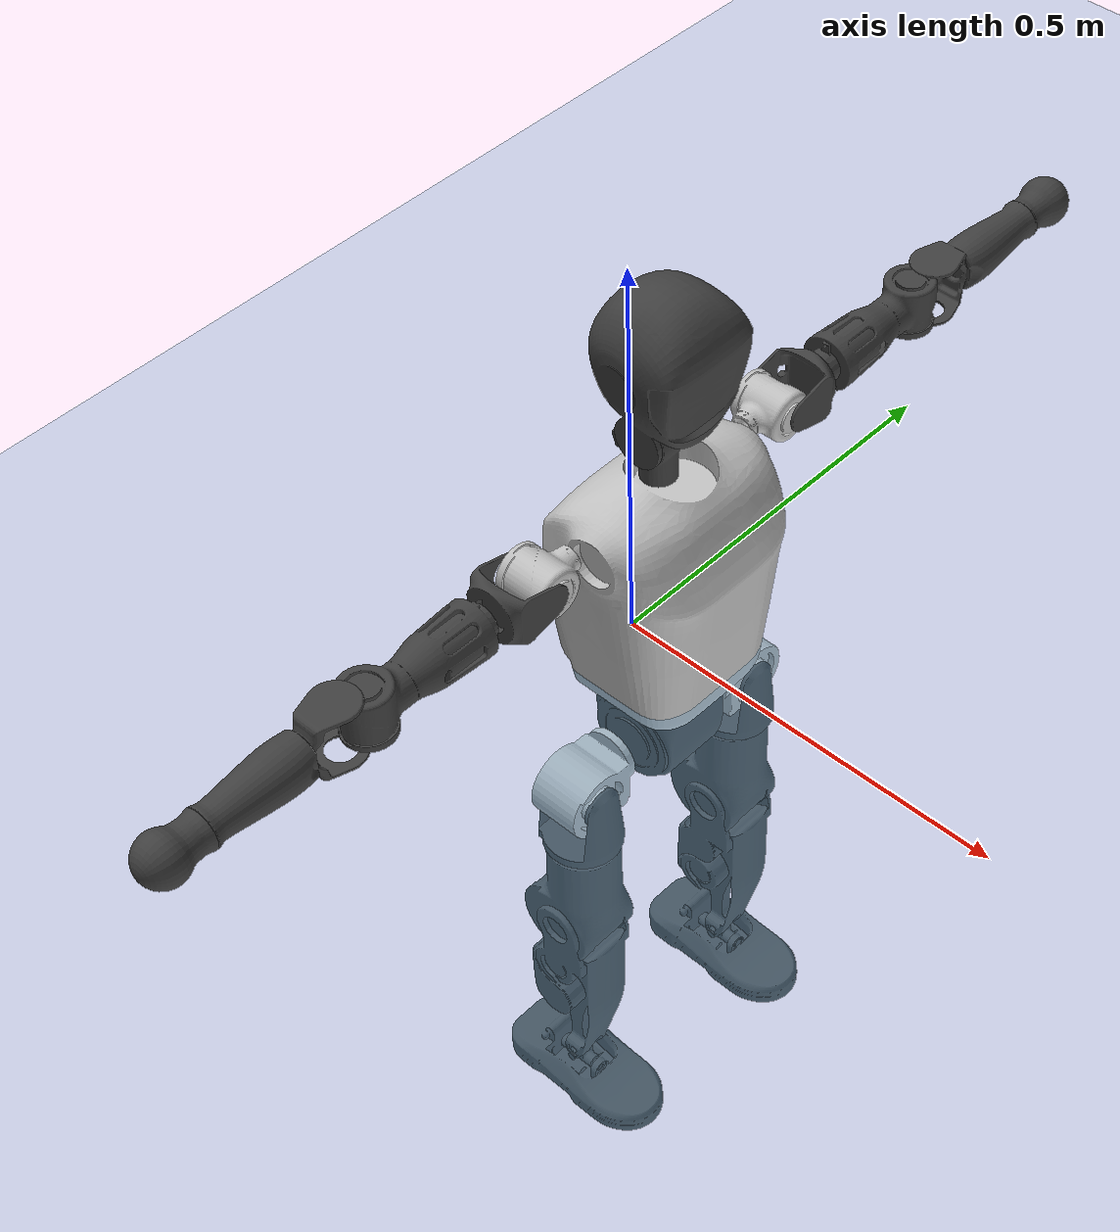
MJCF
<mujoco model="T1">
  <compiler angle="radian" assetdir="assets" balanceinertia="true" inertiafromgeom="false"/>

  <option timestep="0.005" density="1.2" viscosity="2e-05"/>

  <size nkey="1"/>

  <visual>
    <quality shadowsize="8192"/>
    <map shadowclip="0.5"/>
  </visual>

  <default>
    <default class="/">
      <joint armature="0.01" damping="0.01" frictionloss="0.1"/>
      <geom contype="0" conaffinity="0" group="1" solref="-1000 -80"/>
      <site size="0.01 0.005 0.005" group="5"/>
      <general forcelimited="true" biastype="affine" gainprm="25" biasprm="0 -25 -0.6"/>
      <default class="t1">
        <geom rgba="0.25 0.25 0.25 1"/>
        <default class="visual">
          <geom type="mesh" group="2"/>
        </default>
        <default class="collision">
          <geom group="3"/>
        </default>
        <default class="foot">
          <geom size="0.1115 0.05 0.015" type="box" condim="6" group="4" priority="1" solimp="0.015 1 0.015"/>
        </default>
        <default class="reward_collision_sphere">
          <geom group="5" rgba="1 0 0 1"/>
        </default>
      </default>
    </default>
  </default>

  <asset>
    <texture type="skybox" colorspace="auto" name="//unnamed_texture_0" builtin="gradient" rgb1="0.95 0.95 0.95" rgb2="0.95 0.95 0.95" width="100" height="600"/>
    <texture type="2d" colorspace="auto" name="texplane" builtin="checker" rgb1="0.345 0.575 0.748" rgb2="0.345 0.575 0.748" markrgb="1 1 1" width="512" height="512"/>
    <material name="MatPlane" class="/" texture="texplane" texuniform="true" texrepeat="2 2" specular="0.9"/>
    <mesh name="Trunk" class="/" file="Trunk.stl"/>
    <mesh name="H1" class="/" file="H1.stl"/>
    <mesh name="H2" class="/" file="H2.stl"/>
    <mesh name="AL1" class="/" file="AL1.stl"/>
    <mesh name="AL2" class="/" file="AL2.stl"/>
    <mesh name="AL3" class="/" file="AL3.stl"/>
    <mesh name="left_hand_link" class="/" file="left_hand_link.stl"/>
    <mesh name="AR1" class="/" file="AR1.stl"/>
    <mesh name="AR2" class="/" file="AR2.stl"/>
    <mesh name="AR3" class="/" file="AR3.stl"/>
    <mesh name="right_hand_link" class="/" file="right_hand_link.stl"/>
    <mesh name="Waist" class="/" file="Waist.stl"/>
    <mesh name="Hip_Pitch_Left" class="/" file="Hip_Pitch_Left.stl"/>
    <mesh name="Hip_Roll_Left" class="/" file="Hip_Roll_Left.stl"/>
    <mesh name="Hip_Yaw_Left" class="/" file="Hip_Yaw_Left.stl"/>
    <mesh name="Shank_Left" class="/" file="Shank_Left.stl"/>
    <mesh name="Ankle_Cross_Left" class="/" file="Ankle_Cross_Left.stl"/>
    <mesh name="left_foot_link" class="/" file="left_foot_link.stl"/>
    <mesh name="Hip_Pitch_Right" class="/" file="Hip_Pitch_Right.stl"/>
    <mesh name="Hip_Roll_Right" class="/" file="Hip_Roll_Right.stl"/>
    <mesh name="Hip_Yaw_Right" class="/" file="Hip_Yaw_Right.stl"/>
    <mesh name="Shank_Right" class="/" file="Shank_Right.stl"/>
    <mesh name="Ankle_Cross_Right" class="/" file="Ankle_Cross_Right.stl"/>
    <mesh name="right_foot_link" class="/" file="right_foot_link.stl"/>
  </asset>

  <worldbody>
    <geom name="floor" class="/" size="100 100 0.125" type="plane" group="0" material="MatPlane"/>
    <light name="toplight_shadow" class="/" pos="0 0 5" dir="0.0990148 0.0990148 -0.990148" type="directional" ambient="0.04 0.04 0.04" diffuse="0.55 0.55 0.55" specular="0.12 0.12 0.12"/>
    <light name="toplight_fill" class="/" pos="0 0 5" dir="0.0990148 0.0990148 -0.990148" type="directional" castshadow="false" ambient="0.04 0.04 0.04" diffuse="0.3 0.3 0.3" specular="0.08 0.08 0.08"/>
    <body name="trunk" childclass="t1" pos="0.000145745 -1.10577e-05 0.000287429" quat="1 6.37555e-05 -0.000254883 -8.89257e-05">
      <inertial pos="0.0400424 0.00230214 0.113049" quat="0.99984 -0.00127392 -0.0162477 -0.00738686" mass="11.9129" diaginertia="0.0162577 0.244163 0.070804"/>
      <joint name="//unnamed_joint_0" type="free" armature="0" damping="0" frictionloss="0"/>
      <geom name="//unnamed_geom_1" class="visual" rgba="0.76 0.76 0.76 1" mesh="Trunk"/>
      <geom name="//unnamed_geom_2" class="collision" size="0.0755457 0.100728 0.151091" pos="0.0425658 0 0.125984" type="box"/>
      <geom name="//unnamed_geom_3" class="reward_collision_sphere" size="0.115837" pos="0.0425658 0 0.104987"/>
      <geom name="//unnamed_geom_4" class="reward_collision_sphere" size="0.0151091" pos="0.0425658 0.107315 0"/>
      <geom name="//unnamed_geom_5" class="reward_collision_sphere" size="0.0151091" pos="0.0425658 -0.107315 0"/>
      <geom name="//unnamed_geom_6" class="reward_collision_sphere" size="0.0151091" pos="0.0425658 0.135091 0.188976"/>
      <geom name="//unnamed_geom_7" class="reward_collision_sphere" size="0.0151091" pos="0.0425658 -0.135091 0.188976"/>
      <site name="imu" pos="-0.00777704 -0.00456537 -0.00415699" size="0.0100728"/>
      <camera name="track" pos="0 -2.52507 0" quat="0.707107 0.707107 0 0" mode="trackcom"/>
      <camera name="ego_camera" pos="0.0865504 0 0.440944" quat="-0.5 -0.5 0.5 0.5"/>
      <body name="H1" pos="0.0433441 -0.00292374 0.257483" quat="1 -2.44242e-05 3.67694e-05 7.60161e-05">
        <inertial pos="-0.00117461 0.000616291 0.0613168" quat="0.766799 -0.00757916 0.0134588 0.641702" mass="0.438203" diaginertia="4.21914e-05 0.000696114 0.000191615"/>
        <joint name="AAHead_yaw" pos="0 0 0" axis="0.00126271 0.000669439 0.999999" range="-1.57031 1.5159" armature="0.0101177" damping="0.0235499" frictionloss="0.0889306"/>
        <geom name="//unnamed_geom_8" class="visual" mesh="H1"/>
        <body name="H2" pos="-0.00150258 -0.000134663 0.0619269" quat="1 -0.000167915 -9.83272e-05 -1.90074e-05">
          <inertial pos="0.00513139 -0.00134094 0.103913" quat="0.986437 0.114732 -0.0844841 -0.0814972" mass="0.647402" diaginertia="0.000365965 0.00621945 0.00227802"/>
          <joint name="Head_pitch" pos="0 0 0" axis="0.00408564 -0.999986 -0.00332192" stiffness="0.00107361" range="-1.22814 0.353094" armature="0.0101153" damping="0.0109741" frictionloss="0.0904399"/>
          <geom name="//unnamed_geom_9" class="visual" mesh="H2"/>
          <geom name="//unnamed_geom_10" class="collision" size="0.0805821" pos="0.0070943 0 0.115485"/>
          <geom name="//unnamed_geom_11" class="reward_collision_sphere" size="0.0906549" pos="0.0141886 0 0.104987"/>
        </body>
      </body>
      <body name="AL1" pos="0.0397209 0.13466 0.229088" quat="0.999999 0.000764935 0.000234042 0.00123133">
        <inertial pos="-0.000491947 0.0557315 -0.000758182" quat="0.508807 0.495231 -0.493347 0.502465" mass="0.53657" diaginertia="0.000244411 0.00427473 0.000371472"/>
        <joint name="Left_Shoulder_Pitch" pos="0 0 0" axis="-3.64749e-05 1 9.25463e-05" stiffness="0.00452015" range="-3.3294 1.27495" armature="0.0100976" damping="0.00783038" frictionloss="0.0996587"/>
        <geom name="//unnamed_geom_12" class="visual" rgba="0.76 0.76 0.76 1" mesh="AL1"/>
        <body name="AL2" pos="0.000227235 0.0626841 -0.0019902" quat="1 -0.000507919 0.000284922 -0.000742577">
          <inertial pos="0.00550809 0.0504179 0.00131159" quat="0.483643 0.522092 -0.485403 0.507832" mass="0.164907" diaginertia="7.24799e-05 0.00110539 0.000232773"/>
          <joint name="Left_Shoulder_Roll" pos="0 0 0" axis="-0.999996 0.00176837 -0.0023624" stiffness="0.000182258" range="-1.56983 1.73402" armature="0.00954124" damping="0.00931117" frictionloss="0.106039"/>
          <geom name="//unnamed_geom_13" class="visual" mesh="AL2"/>
          <body name="AL3" pos="0.000665336 0.0790702 0.0021029" quat="1 -7.49371e-06 7.28869e-05 -0.000170325">
            <inertial pos="-0.0028566 0.107859 -0.00192123" quat="0.703288 0.710841 -0.00357242 -0.008811" mass="1.11073" diaginertia="0.00241169 0.0418631 0.000811751"/>
            <joint name="Left_Elbow_Pitch" pos="0 0 0" axis="-0.00104698 -0.999991 0.00399781" range="-2.29263 2.32337" armature="0.0107369" damping="0.0216138" frictionloss="0.0979693"/>
            <geom name="//unnamed_geom_14" class="visual" mesh="AL3"/>
            <geom name="//unnamed_geom_15" class="collision" size="0.0302183 0.0755457" pos="0 0.0631266 0" quat="0.707105 0.707108 0 0" type="cylinder"/>
            <geom name="//unnamed_geom_16" class="reward_collision_sphere" size="0.036262"/>
            <body name="left_hand_link" pos="0.00102311 0.188828 -0.00213771" quat="1 -0.000415517 -0.000267604 -2.24743e-05">
              <inertial pos="-9.50235e-05 0.139266 0.000398303" quat="0.706038 0.708172 -0.00190921 -6.49013e-05" mass="0.330128" diaginertia="0.00141739 0.0259136 0.000277308"/>
              <joint name="Left_Elbow_Yaw" pos="0 0 0" axis="-0.00494741 -0.00238132 0.999985" stiffness="0.0100216" range="-2.49871 -0.00558262" armature="0.0103716" damping="0.000586082" frictionloss="0.113779"/>
              <geom name="//unnamed_geom_17" class="visual" mesh="left_hand_link"/>
              <geom name="//unnamed_geom_18" class="collision" size="0.0302183 0.0881367" pos="0 0.164129 0" quat="0.707105 0.707108 0 0" type="cylinder"/>
              <geom name="//unnamed_geom_19" class="reward_collision_sphere" size="0.0503638"/>
              <geom name="//unnamed_geom_20" class="reward_collision_sphere" size="0.0352547" pos="0 0.138879 0"/>
              <geom name="//unnamed_geom_21" class="reward_collision_sphere" size="0.0352547" pos="0 0.271445 0"/>
            </body>
          </body>
        </body>
      </body>
      <body name="AR1" pos="0.0398757 -0.133666 0.228578" quat="1 0.000777073 0.000193794 -0.000328177">
        <inertial pos="-0.00265594 -0.0571193 -0.0028468" quat="0.500756 0.507412 -0.501325 0.490357" mass="0.562163" diaginertia="0.000246372 0.00421261 0.000385264"/>
        <joint name="Right_Shoulder_Pitch" pos="0 0 0" axis="-5.95117e-05 -1 -0.000843776" stiffness="0.00557993" range="-1.22312 3.29863" armature="0.0098168" damping="0" frictionloss="0.0873482"/>
        <geom name="//unnamed_geom_22" class="visual" rgba="0.76 0.76 0.76 1" mesh="AR1"/>
        <body name="AR2" pos="-0.00181471 -0.0591659 0.000950046" quat="1 -5.91227e-05 -4.29509e-05 0.000197664">
          <inertial pos="0.00110304 -0.0503198 -0.000940857" quat="0.51847 0.494719 -0.505575 0.480454" mass="0.162675" diaginertia="7.34655e-05 0.00109387 0.000230435"/>
          <joint name="Right_Shoulder_Roll" pos="0 0 0" axis="-0.999997 -0.00254345 0.000310071" stiffness="0.00579695" range="-1.7439 1.56304" armature="0.0100208" damping="0" frictionloss="0.0966163"/>
          <geom name="//unnamed_geom_23" class="visual" mesh="AR2"/>
          <body name="AR3" pos="-0.000751102 -0.0752696 -0.000560767" quat="1 0.000843928 0.000118598 -0.000461886">
            <inertial pos="-0.000782858 -0.107282 0.000913109" quat="0.706285 0.707859 -0.00871115 0.00462335" mass="1.06674" diaginertia="0.00235835 0.0405607 0.000810467"/>
            <joint name="Right_Elbow_Pitch" pos="0 0 0" axis="-7.7409e-05 1 0.000286234" stiffness="0.000450847" range="-2.25316 2.25742" armature="0.0101204" damping="0.00861076" frictionloss="0.0952938"/>
            <geom name="//unnamed_geom_24" class="visual" mesh="AR3"/>
            <geom name="//unnamed_geom_25" class="collision" size="0.0302183 0.0755457" pos="0 -0.0631266 0" quat="0.707105 0.707108 0 0" type="cylinder"/>
            <geom name="//unnamed_geom_26" class="reward_collision_sphere" size="0.036262"/>
            <body name="right_hand_link" pos="-0.00170465 -0.183213 0.00221915" quat="0.999999 -0.000271432 -0.000811172 -0.000668891">
              <inertial pos="-8.07903e-05 -0.136027 0.000845472" quat="0.708377 0.705821 0.00114172 0.00422769" mass="0.343352" diaginertia="0.00147341 0.0262202 0.000276082"/>
              <joint name="Right_Elbow_Yaw" pos="0 0 0" axis="-0.000698588 0.00027034 1" stiffness="0.00121427" range="0.0371365 2.42797" armature="0.0102352" damping="0.00855738" frictionloss="0.114375"/>
              <geom name="//unnamed_geom_27" class="visual" mesh="right_hand_link"/>
              <geom name="//unnamed_geom_28" class="collision" size="0.0302183 0.0881367" pos="0 -0.164129 0" quat="0.707105 0.707108 0 0" type="cylinder"/>
              <geom name="//unnamed_geom_29" class="reward_collision_sphere" size="0.0503638"/>
              <geom name="//unnamed_geom_30" class="reward_collision_sphere" size="0.0352547" pos="0 -0.138879 0"/>
              <geom name="//unnamed_geom_31" class="reward_collision_sphere" size="0.0352547" pos="0 -0.271445 0"/>
            </body>
          </body>
        </body>
      </body>
      <body name="Waist" pos="0.0414105 0.000477084 -0.122887" quat="1 -0.000256388 0.000111933 7.77453e-06">
        <inertial pos="-0.000852341 -0.00148184 0.00655721" quat="0.984149 0.00179963 -0.177297 0.00353546" mass="2.5051" diaginertia="0.000915429 0.0165953 0.00592005"/>
        <joint name="Waist" pos="0 0 0" axis="3.23646e-05 -0.000687983 1" range="-1.59954 1.56977" armature="0.0111164" damping="0.0189489" frictionloss="0.10173"/>
        <geom name="//unnamed_geom_32" class="visual" mesh="Waist"/>
        <body name="Hip_Pitch_Left" pos="-0.000621121 0.134209 -0.00183425" quat="1 0.000248119 -0.000118516 -5.94457e-05">
          <inertial pos="0.000371844 -0.0068465 -0.0169671" quat="0.976111 0.216709 0.0134294 0.00799775" mass="1.08094" diaginertia="0.000324319 0.00481749 0.00159764"/>
          <joint name="Left_Hip_Pitch" pos="0 0 0" axis="0.000516809 0.999998 -0.00216299" stiffness="0.00319709" range="-1.80086 1.62566" armature="0.011386" damping="0.0179778" frictionloss="0.10037"/>
          <geom name="//unnamed_geom_33" class="visual" rgba="0.76 0.76 0.76 1" mesh="Hip_Pitch_Left"/>
          <body name="Hip_Roll_Left" pos="0.00243386 -0.00193281 -0.0230426" quat="1 5.57122e-05 -2.33217e-05 -1.33699e-05">
            <inertial pos="-0.000158397 0.000200229 -0.0554808" quat="0.704596 -0.0123707 0.00492299 0.709484" mass="0.380017" diaginertia="0.000302434 0.00493894 0.000653057"/>
            <joint name="Left_Hip_Roll" pos="0 0 0" axis="-0.999931 0.0117238 0.000717258" stiffness="0.00982964" range="-1.56587 0.182105" armature="0.0114146" damping="0.0133968" frictionloss="0.0929522"/>
            <geom name="//unnamed_geom_34" class="visual" mesh="Hip_Roll_Left"/>
            <geom name="//unnamed_geom_35" class="reward_collision_sphere" size="0.0554002"/>
            <body name="Hip_Yaw_Left" pos="-0.00219991 -0.00121869 -0.0838509" quat="1 -0.0001745 -0.00041397 -0.000338683">
              <inertial pos="-0.00763896 -0.000771345 -0.0927733" quat="0.697632 -0.0302661 -0.0318534 0.715108" mass="2.21542" diaginertia="0.00460501 0.0778698 0.00328885"/>
              <joint name="Left_Hip_Yaw" pos="0 0 0" axis="0.000830033 -0.00638609 -0.999979" stiffness="0.00316739" range="-1.04066 1.06094" armature="0.0102154" damping="0.000620072" frictionloss="0.101682"/>
              <geom name="//unnamed_geom_36" class="visual" mesh="Hip_Yaw_Left"/>
              <geom name="//unnamed_geom_37" class="collision" size="0.0503638 0.0805821" type="cylinder"/>
              <body name="Shank_Left" pos="-0.00722725 -0.000200363 -0.141278" quat="1 0.000178425 5.52824e-05 -5.37013e-05">
                <inertial pos="-0.00330896 0.00314986 -0.127849" quat="0.997534 0.00147296 -0.0245514 0.0657408" mass="1.70564" diaginertia="0.00617261 0.111287 0.00233042"/>
                <joint name="Left_Knee_Pitch" pos="0 0 0" axis="-0.00354364 0.999989 -0.0030489" range="0.0177405 2.32461" armature="0.0102245" damping="0.0142673" frictionloss="0.105802"/>
                <geom name="//unnamed_geom_38" class="visual" mesh="Shank_Left"/>
                <geom name="//unnamed_geom_39" class="collision" size="0.0503638 0.0755457" pos="0 0 -0.125984" type="cylinder"/>
                <geom name="//unnamed_geom_40" class="reward_collision_sphere" size="0.065473"/>
                <body name="Ankle_Cross_Left" pos="-0.000513667 -0.000781449 -0.291449" quat="1 -0.000231325 0.00028092 -6.53152e-05">
                  <inertial pos="-0.00309987 0.00254271 -0.0069574" quat="0.444412 0.543413 0.560327 0.439584" mass="0.0776669" diaginertia="5.43262e-06 8.09163e-05 1.46086e-05"/>
                  <joint name="Left_Ankle_Pitch" pos="0 0 0" axis="-0.000373984 1 0.000275262" range="-0.814453 0.328847" armature="0.00952377" damping="0.0116435" frictionloss="0.0980685"/>
                  <geom name="//unnamed_geom_41" class="visual" mesh="Ankle_Cross_Left"/>
                  <body name="left_foot_link" pos="0.000460532 -0.00220129 -0.0102999" quat="1 -0.000161698 -0.000237374 -0.000190282">
                    <inertial pos="-0.00275566 -2.7426e-05 -0.012225" quat="-0.00223572 0.620618 -0.00106344 0.78411" mass="0.675847" diaginertia="0.000451993 0.00753516 0.00277427"/>
                    <joint name="Left_Ankle_Roll" pos="0 0 0" axis="-0.999998 -0.00175591 0.00102018" range="-0.433315 0.442552" armature="0.0101503" damping="0.0130579" frictionloss="0.099904"/>
                    <geom name="//unnamed_geom_42" class="visual" mesh="left_foot_link"/>
                    <geom name="left_foot" class="foot" size="0.105511 0.0479151 0.0149449" pos="0.0070943 0 -0.015748"/>
                    <geom name="//unnamed_geom_44" class="reward_collision_sphere" size="0.0523784" pos="0.0070943 0 -0.015748"/>
                    <geom name="//unnamed_geom_45" class="reward_collision_sphere" size="0.0302183" pos="0.0673958 -0.0290382 -0.015748"/>
                    <geom name="//unnamed_geom_46" class="reward_collision_sphere" size="0.0302183" pos="-0.0496601 -0.0290382 -0.015748"/>
                    <site name="left_foot" class="foot" pos="0.0070943 0 -0.015748" size="0.0100728"/>
                  </body>
                </body>
              </body>
            </body>
          </body>
        </body>
        <body name="Hip_Pitch_Right" pos="-0.000268231 -0.134359 0.000740295" quat="0.999999 -0.00017635 0.00112013 0.000320171">
          <inertial pos="-0.00235782 0.00994716 -0.0159964" quat="0.97367 -0.227603 0.0117729 -0.00496624" mass="1.07086" diaginertia="0.000333562 0.00487242 0.00159011"/>
          <joint name="Right_Hip_Pitch" pos="0 0 0" axis="0.000627218 -0.999995 -0.00310822" range="-1.57241 1.74825" armature="0.00899128" damping="0.00992651" frictionloss="0.0990097"/>
          <geom name="//unnamed_geom_47" class="visual" rgba="0.76 0.76 0.76 1" mesh="Hip_Pitch_Right"/>
          <body name="Hip_Roll_Right" pos="0.00209659 0.000625981 -0.0234267" quat="1 -0.000410058 0.000615724 0.000279454">
            <inertial pos="0.0011283 -0.000310732 -0.0542494" quat="0.705975 -0.018801 -0.00367075 0.707978" mass="0.392854" diaginertia="0.000314318 0.00502633 0.000658214"/>
            <joint name="Right_Hip_Roll" pos="0 0 0" axis="-0.999995 -0.00290062 0.00100299" range="-0.153322 1.58996" armature="0.0101108" damping="0.0108765" frictionloss="0.1072"/>
            <geom name="//unnamed_geom_48" class="visual" mesh="Hip_Roll_Right"/>
            <geom name="//unnamed_geom_49" class="reward_collision_sphere" size="0.0554002"/>
            <body name="Hip_Yaw_Right" pos="-0.000172695 0.000684032 -0.0870298" quat="1 -0.000514422 0.000412237 7.82737e-06">
              <inertial pos="-0.0042342 -0.00172948 -0.0964268" quat="0.713676 -0.031129 -0.0331463 0.698999" mass="2.16843" diaginertia="0.00460426 0.082151 0.00320652"/>
              <joint name="Right_Hip_Yaw" pos="0 0 0" axis="-0.0124443 0.00541533 -0.999908" stiffness="0.000967774" range="-1.01974 0.989082" armature="0.0114398" damping="0.000503276" frictionloss="0.100659"/>
              <geom name="//unnamed_geom_50" class="visual" mesh="Hip_Yaw_Right"/>
              <geom name="//unnamed_geom_51" class="collision" size="0.0503638 0.0805821" type="cylinder"/>
              <body name="Shank_Right" pos="-0.0104933 -0.000104797 -0.138616" quat="1 0.000352115 0.000684474 -0.00025035">
                <inertial pos="-0.00360894 -0.000795564 -0.131438" quat="0.99934 -0.00224797 -0.0218531 -0.0289331" mass="1.88126" diaginertia="0.0065723 0.113317 0.00257075"/>
                <joint name="Right_Knee_Pitch" pos="0 0 0" axis="0.00839125 -0.999965 1.01697e-05" stiffness="0.00417984" range="-2.28553 -0.00252171" armature="0.011342" damping="0.0168176" frictionloss="0.0997815"/>
                <geom name="//unnamed_geom_52" class="visual" mesh="Shank_Right"/>
                <geom name="//unnamed_geom_53" class="collision" size="0.0503638 0.0755457" pos="0 0 -0.125984" type="cylinder"/>
                <geom name="//unnamed_geom_54" class="reward_collision_sphere" size="0.065473"/>
                <body name="Ankle_Cross_Right" pos="-0.00117349 -0.00121168 -0.294602" quat="1 -0.000201955 0.000207323 -9.06678e-05">
                  <inertial pos="-0.00288551 -0.00170588 -0.00831226" quat="0.443094 0.55106 0.550985 0.443189" mass="0.0756857" diaginertia="5.38931e-06 8.52051e-05 1.4772e-05"/>
                  <joint name="Right_Ankle_Pitch" pos="0 0 0" axis="0.000198933 -0.999983 -0.00582453" range="-0.40529 0.813681" armature="0.0100699" damping="0.00616517" frictionloss="0.10586"/>
                  <geom name="//unnamed_geom_55" class="visual" mesh="Ankle_Cross_Right"/>
                  <body name="right_foot_link" pos="0.00274707 -0.000768524 -0.0143341" quat="1 2.1357e-05 -1.99397e-06 -2.93314e-06">
                    <inertial pos="-0.00267232 0.000767369 -0.00977877" quat="0.00018163 0.621155 0.00134534 0.783686" mass="0.702481" diaginertia="0.000489748 0.00745319 0.00280032"/>
                    <joint name="Right_Ankle_Roll" pos="0 0 0" axis="-0.999959 -0.00715599 -0.0055084" range="-0.49224 0.441967" armature="0.00967107" damping="0" frictionloss="0.0959458"/>
                    <geom name="//unnamed_geom_56" class="visual" mesh="right_foot_link"/>
                    <geom name="right_foot" class="foot" size="0.105835 0.0450028 0.0148523" pos="0.0070943 0 -0.015748"/>
                    <geom name="//unnamed_geom_58" class="reward_collision_sphere" size="0.0402911"/>
                    <geom name="//unnamed_geom_59" class="reward_collision_sphere" size="0.0302183" pos="0.0070943 0 -0.015748"/>
                    <geom name="//unnamed_geom_60" class="reward_collision_sphere" size="0.0302183" pos="0.0673958 0.0290382 -0.015748"/>
                    <geom name="//unnamed_geom_61" class="reward_collision_sphere" size="0.0302183" pos="-0.0496601 0.0290382 -0.015748"/>
                    <site name="right_foot" class="foot" pos="0.0070943 0 -0.015748" size="0.0100728"/>
                  </body>
                </body>
              </body>
            </body>
          </body>
        </body>
      </body>
    </body>
  </worldbody>

  <contact>
    <pair class="/" geom1="floor" geom2="left_foot" name="//unnamed_contact_0"/>
    <pair class="/" geom1="floor" geom2="right_foot" name="//unnamed_contact_1"/>
  </contact>

  <actuator>
    <general name="AAHead_yaw" class="/" joint="AAHead_yaw" forcerange="-6.87633 6.87633" gainprm="23.5579" biasprm="0 -23.5579 -0.603107"/>
    <general name="Head_pitch" class="/" joint="Head_pitch" forcerange="-7.04628 7.04628" gainprm="23.5579" biasprm="0 -23.5579 -0.603107"/>
    <general name="Left_Shoulder_Pitch" class="/" joint="Left_Shoulder_Pitch" forcerange="-16.8586 16.8586" gainprm="23.5579" biasprm="0 -23.5579 -0.603107"/>
    <general name="Left_Shoulder_Roll" class="/" joint="Left_Shoulder_Roll" forcerange="-18.2813 18.2813" gainprm="23.5579" biasprm="0 -23.5579 -0.603107"/>
    <general name="Left_Elbow_Pitch" class="/" joint="Left_Elbow_Pitch" forcerange="-18.1213 18.1213" gainprm="23.5579" biasprm="0 -23.5579 -0.603107"/>
    <general name="Left_Elbow_Yaw" class="/" joint="Left_Elbow_Yaw" forcerange="-18.5379 18.5379" gainprm="23.5579" biasprm="0 -23.5579 -0.603107"/>
    <general name="Right_Shoulder_Pitch" class="/" joint="Right_Shoulder_Pitch" forcerange="-18.0966 18.0966" gainprm="23.5579" biasprm="0 -23.5579 -0.603107"/>
    <general name="Right_Shoulder_Roll" class="/" joint="Right_Shoulder_Roll" forcerange="-17.1539 17.1539" gainprm="23.5579" biasprm="0 -23.5579 -0.603107"/>
    <general name="Right_Elbow_Pitch" class="/" joint="Right_Elbow_Pitch" forcerange="-19.996 19.996" gainprm="23.5579" biasprm="0 -23.5579 -0.603107"/>
    <general name="Right_Elbow_Yaw" class="/" joint="Right_Elbow_Yaw" forcerange="-17.8806 17.8806" gainprm="23.5579" biasprm="0 -23.5579 -0.603107"/>
    <general name="Waist" class="/" joint="Waist" forcerange="-30.5899 30.5899" gainprm="23.5579" biasprm="0 -23.5579 -0.603107"/>
    <general name="Left_Hip_Pitch" class="/" joint="Left_Hip_Pitch" forcerange="-46.1777 46.1777" gainprm="23.5579" biasprm="0 -23.5579 -0.603107"/>
    <general name="Left_Hip_Roll" class="/" joint="Left_Hip_Roll" forcerange="-33.0788 33.0788" gainprm="23.5579" biasprm="0 -23.5579 -0.603107"/>
    <general name="Left_Hip_Yaw" class="/" joint="Left_Hip_Yaw" forcerange="-27.2202 27.2202" gainprm="23.5579" biasprm="0 -23.5579 -0.603107"/>
    <general name="Left_Knee_Pitch" class="/" joint="Left_Knee_Pitch" forcerange="-57.9377 57.9377" gainprm="23.5579" biasprm="0 -23.5579 -0.603107"/>
    <general name="Left_Ankle_Pitch" class="/" joint="Left_Ankle_Pitch" forcerange="-19.9731 19.9731" gainprm="23.5579" biasprm="0 -23.5579 -0.603107"/>
    <general name="Left_Ankle_Roll" class="/" joint="Left_Ankle_Roll" forcerange="-16.6814 16.6814" gainprm="23.5579" biasprm="0 -23.5579 -0.603107"/>
    <general name="Right_Hip_Pitch" class="/" joint="Right_Hip_Pitch" forcerange="-45.4416 45.4416" gainprm="23.5579" biasprm="0 -23.5579 -0.603107"/>
    <general name="Right_Hip_Roll" class="/" joint="Right_Hip_Roll" forcerange="-30.5944 30.5944" gainprm="23.5579" biasprm="0 -23.5579 -0.603107"/>
    <general name="Right_Hip_Yaw" class="/" joint="Right_Hip_Yaw" forcerange="-33.284 33.284" gainprm="23.5579" biasprm="0 -23.5579 -0.603107"/>
    <general name="Right_Knee_Pitch" class="/" joint="Right_Knee_Pitch" forcerange="-60.4682 60.4682" gainprm="23.5579" biasprm="0 -23.5579 -0.603107"/>
    <general name="Right_Ankle_Pitch" class="/" joint="Right_Ankle_Pitch" forcerange="-20.9909 20.9909" gainprm="23.5579" biasprm="0 -23.5579 -0.603107"/>
    <general name="Right_Ankle_Roll" class="/" joint="Right_Ankle_Roll" forcerange="-14.1469 14.1469" gainprm="23.5579" biasprm="0 -23.5579 -0.603107"/>
  </actuator>

  <sensor>
    <gyro site="imu" name="imu_angular_velocity"/>
    <velocimeter site="imu" name="imu_linear_velocity"/>
    <framelinvel objtype="site" objname="left_foot" name="left_foot_global_linear_velocity"/>
    <framelinvel objtype="site" objname="right_foot" name="right_foot_global_linear_velocity"/>
  </sensor>

  <keyframe>
    <key name="home" qpos="0 0 0.6385 1 0 0 0 0 0 0 1.4 0 -0.4 0 -1.4 0 0.4 0 -0.4 0 0 0.8 -0.4 0 0.4 0 0 -0.8 0.4 0"/>
  </keyframe>
</mujoco>
